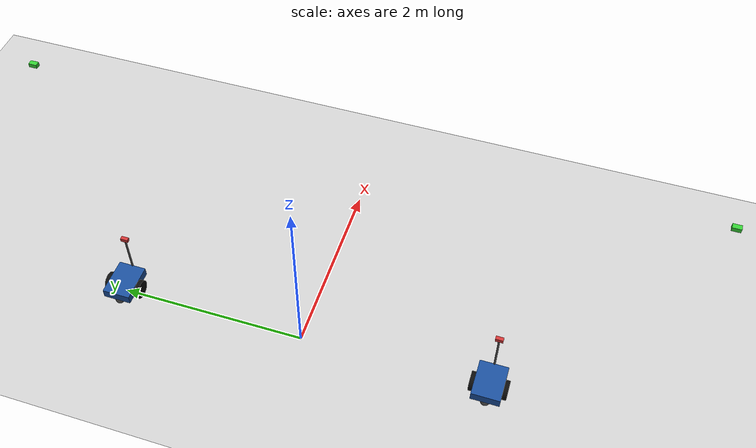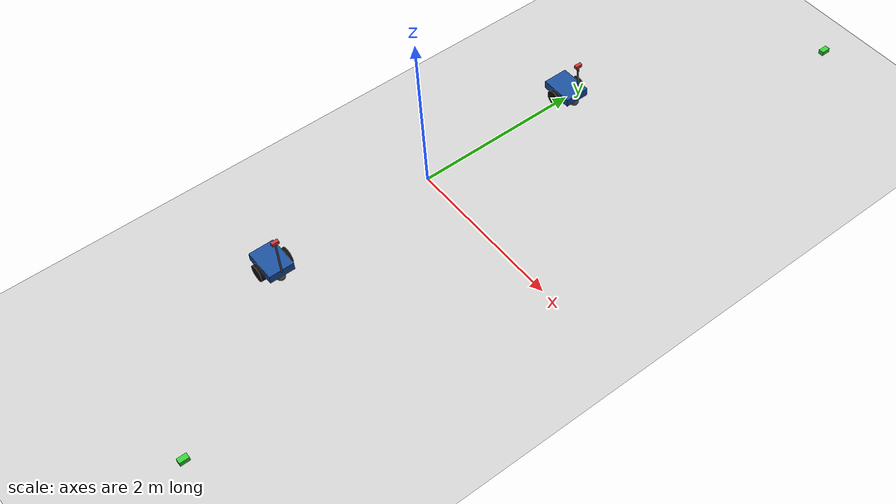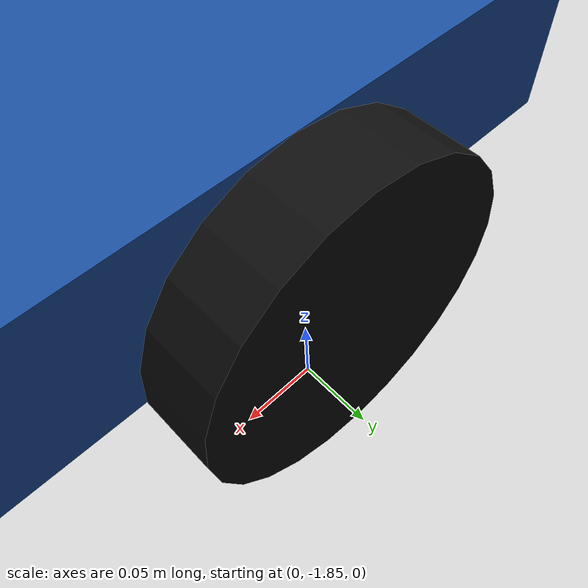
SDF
<?xml version="1.0" ?>
<sdf version="1.6">
  <world name="default">
    <scene>
      <ambient>0.7 0.7 0.7 1</ambient>
      <background>0.7 0.8 0.9 1</background>
      <shadows>true</shadows>
    </scene>
    <gui>
      <camera name="user_camera">
        <pose>-5 0 1 0 0.2 0</pose>
      </camera>
    </gui>
    <physics type="ode">
      <ode>
        <solver>
          <type>quick</type>
          <iters>100</iters>
          <sor>1.0</sor>
        </solver>
        <constraints>
          <cfm>0.0</cfm>
          <erp>0.2</erp>
          <contact_max_correcting_vel>100.0</contact_max_correcting_vel>
          <contact_surface_layer>0.001</contact_surface_layer>
        </constraints>
      </ode>
      <real_time_update_rate>1000</real_time_update_rate>
    </physics>
    <gravity>0 0 -9.8</gravity>
    <include>
      <uri>model://sun</uri>
    </include>

    <include>
      <uri>model://ground_plane</uri>
    </include>

    <model name="rover1">
        <pose>0 2 0 0 0 0</pose>

      <!-- Chassis. Origin sits at wheel-axle height (0.15 m) so the wheels
           (r = 0.1 m) and the two frictionless caster spheres all touch the
           ground plane when the model spawns at z = 0. -->
      <link name="base_link">
        <pose>0 0 0.15 0 0 0</pose>
        <inertial>
          <mass>5.0</mass>
          <inertia>
            <ixx>0.0417</ixx>
            <ixy>0</ixy>
            <ixz>0</ixz>
            <iyy>0.0708</iyy>
            <iyz>0</iyz>
            <izz>0.1042</izz>
          </inertia>
        </inertial>
        <collision name="base_collision">
          <geometry>
            <box>
              <size>0.4 0.3 0.1</size>
            </box>
          </geometry>
        </collision>
        <!-- Front / rear casters: frictionless spheres so the two driven
             wheels fully determine the rover's motion. -->
        <collision name="front_caster_collision">
          <pose>0.15 0 -0.10 0 0 0</pose>
          <geometry>
            <sphere>
              <radius>0.05</radius>
            </sphere>
          </geometry>
          <surface>
            <friction>
              <ode>
                <mu>0.0</mu>
                <mu2>0.0</mu2>
              </ode>
            </friction>
          </surface>
        </collision>
        <collision name="rear_caster_collision">
          <pose>-0.15 0 -0.10 0 0 0</pose>
          <geometry>
            <sphere>
              <radius>0.05</radius>
            </sphere>
          </geometry>
          <surface>
            <friction>
              <ode>
                <mu>0.0</mu>
                <mu2>0.0</mu2>
              </ode>
            </friction>
          </surface>
        </collision>
        <visual name="base_visual">
          <geometry>
            <box>
              <size>0.4 0.3 0.1</size>
            </box>
          </geometry>
          <material>
            <ambient>0.1 0.3 0.6 1</ambient>
            <diffuse>0.1 0.3 0.6 1</diffuse>
          </material>
        </visual>
        <visual name="front_caster_visual">
          <pose>0.15 0 -0.10 0 0 0</pose>
          <geometry>
            <sphere>
              <radius>0.05</radius>
            </sphere>
          </geometry>
          <material>
            <ambient>0.3 0.3 0.3 1</ambient>
            <diffuse>0.3 0.3 0.3 1</diffuse>
          </material>
        </visual>
        <visual name="rear_caster_visual">
          <pose>-0.15 0 -0.10 0 0 0</pose>
          <geometry>
            <sphere>
              <radius>0.05</radius>
            </sphere>
          </geometry>
          <material>
            <ambient>0.3 0.3 0.3 1</ambient>
            <diffuse>0.3 0.3 0.3 1</diffuse>
          </material>
        </visual>
        <!-- Camera mast (visual only) up to the camera_link offset. -->
        <visual name="camera_mast_visual">
          <pose>0.2 0 0.25 0 0 0</pose>
          <geometry>
            <cylinder>
              <radius>0.01</radius>
              <length>0.45</length>
            </cylinder>
          </geometry>
          <material>
            <ambient>0.3 0.3 0.3 1</ambient>
            <diffuse>0.3 0.3 0.3 1</diffuse>
          </material>
        </visual>
      </link>

      <link name="left_wheel">
        <pose>0 0.17 0.1 -1.5707963 0 0</pose>
        <inertial>
          <mass>0.5</mass>
          <inertia>
            <ixx>0.00135</ixx>
            <ixy>0</ixy>
            <ixz>0</ixz>
            <iyy>0.00135</iyy>
            <iyz>0</iyz>
            <izz>0.0025</izz>
          </inertia>
        </inertial>
        <collision name="left_wheel_collision">
          <geometry>
            <cylinder>
              <radius>0.1</radius>
              <length>0.05</length>
            </cylinder>
          </geometry>
          <surface>
            <friction>
              <ode>
                <mu>1.5</mu>
                <mu2>1.5</mu2>
              </ode>
            </friction>
          </surface>
        </collision>
        <visual name="left_wheel_visual">
          <geometry>
            <cylinder>
              <radius>0.1</radius>
              <length>0.05</length>
            </cylinder>
          </geometry>
          <material>
            <ambient>0.05 0.05 0.05 1</ambient>
            <diffuse>0.05 0.05 0.05 1</diffuse>
          </material>
        </visual>
      </link>

      <link name="right_wheel">
        <pose>0 -0.17 0.1 -1.5707963 0 0</pose>
        <inertial>
          <mass>0.5</mass>
          <inertia>
            <ixx>0.00135</ixx>
            <ixy>0</ixy>
            <ixz>0</ixz>
            <iyy>0.00135</iyy>
            <iyz>0</iyz>
            <izz>0.0025</izz>
          </inertia>
        </inertial>
        <collision name="right_wheel_collision">
          <geometry>
            <cylinder>
              <radius>0.1</radius>
              <length>0.05</length>
            </cylinder>
          </geometry>
          <surface>
            <friction>
              <ode>
                <mu>1.5</mu>
                <mu2>1.5</mu2>
              </ode>
            </friction>
          </surface>
        </collision>
        <visual name="right_wheel_visual">
          <geometry>
            <cylinder>
              <radius>0.1</radius>
              <length>0.05</length>
            </cylinder>
          </geometry>
          <material>
            <ambient>0.05 0.05 0.05 1</ambient>
            <diffuse>0.05 0.05 0.05 1</diffuse>
          </material>
        </visual>
      </link>

      <joint name="left_wheel_joint" type="revolute">
        <parent>base_link</parent>
        <child>left_wheel</child>
        <axis>
          <xyz>0 1 0</xyz>
          <use_parent_model_frame>true</use_parent_model_frame>
        </axis>
      </joint>

      <joint name="right_wheel_joint" type="revolute">
        <parent>base_link</parent>
        <child>right_wheel</child>
        <axis>
          <xyz>0 1 0</xyz>
          <use_parent_model_frame>true</use_parent_model_frame>
        </axis>
      </joint>

      <!-- Camera at (0.2, 0.0, 0.5) relative to base_link per the plan doc's
           Step 1.1 spec (base_link origin is at z = 0.15 in the model frame,
           so the link pose below is 0.15 + 0.5). -->
      <link name="camera_link">
        <pose>0.2 0 0.65 0 0 0</pose>
        <inertial>
          <mass>0.05</mass>
          <inertia>
            <ixx>0.00001</ixx>
            <ixy>0</ixy>
            <ixz>0</ixz>
            <iyy>0.00001</iyy>
            <iyz>0</iyz>
            <izz>0.00001</izz>
          </inertia>
        </inertial>
        <visual name="camera_visual">
          <geometry>
            <box>
              <size>0.04 0.08 0.04</size>
            </box>
          </geometry>
          <material>
            <ambient>0.8 0.2 0.2 1</ambient>
            <diffuse>0.8 0.2 0.2 1</diffuse>
          </material>
        </visual>
        <sensor type="camera" name="rover_camera_sensor">
          <update_rate>15.0</update_rate>
          <always_on>true</always_on>
          <visualize>false</visualize>
          <camera name="rover_camera">
            <horizontal_fov>1.3962634</horizontal_fov>
            <image>
              <width>640</width>
              <height>480</height>
              <format>R8G8B8</format>
            </image>
            <clip>
              <near>0.05</near>
              <far>100.0</far>
            </clip>
          </camera>
          <plugin name="camera_controller" filename="libgazebo_ros_camera.so">
            <robotNamespace>/</robotNamespace>
            <cameraName>rover1/camera</cameraName>
            <imageTopicName>image_raw</imageTopicName>
            <cameraInfoTopicName>camera_info</cameraInfoTopicName>
            <frameName>camera_link</frameName>
          </plugin>
        </sensor>
      </link>

      <joint name="camera_joint" type="fixed">
        <parent>base_link</parent>
        <child>camera_link</child>
      </joint>

      <plugin name="diff_drive_controller" filename="libgazebo_ros_diff_drive.so">
        <robotNamespace>/rover1</robotNamespace>
        <commandTopic>cmd_vel</commandTopic>
        <odometryTopic>odom</odometryTopic>
        <odometryFrame>odom</odometryFrame>
        <odometrySource>world</odometrySource>
        <robotBaseFrame>base_link</robotBaseFrame>
        <leftJoint>left_wheel_joint</leftJoint>
        <rightJoint>right_wheel_joint</rightJoint>
        <wheelSeparation>0.34</wheelSeparation>
        <wheelDiameter>0.2</wheelDiameter>
        <wheelTorque>10.0</wheelTorque>
        <wheelAcceleration>0.0</wheelAcceleration>
        <updateRate>30.0</updateRate>
        <publishOdomTF>false</publishOdomTF>
        <publishWheelTF>false</publishWheelTF>
        <publishWheelJointState>false</publishWheelJointState>
        <legacyMode>false</legacyMode>
      </plugin>

    </model>

    <model name="rover2">
        <pose>0 -2 0 0 0 0</pose>

      <!-- Chassis. Origin sits at wheel-axle height (0.15 m) so the wheels
           (r = 0.1 m) and the two frictionless caster spheres all touch the
           ground plane when the model spawns at z = 0. -->
      <link name="base_link">
        <pose>0 0 0.15 0 0 0</pose>
        <inertial>
          <mass>5.0</mass>
          <inertia>
            <ixx>0.0417</ixx>
            <ixy>0</ixy>
            <ixz>0</ixz>
            <iyy>0.0708</iyy>
            <iyz>0</iyz>
            <izz>0.1042</izz>
          </inertia>
        </inertial>
        <collision name="base_collision">
          <geometry>
            <box>
              <size>0.4 0.3 0.1</size>
            </box>
          </geometry>
        </collision>
        <!-- Front / rear casters: frictionless spheres so the two driven
             wheels fully determine the rover's motion. -->
        <collision name="front_caster_collision">
          <pose>0.15 0 -0.10 0 0 0</pose>
          <geometry>
            <sphere>
              <radius>0.05</radius>
            </sphere>
          </geometry>
          <surface>
            <friction>
              <ode>
                <mu>0.0</mu>
                <mu2>0.0</mu2>
              </ode>
            </friction>
          </surface>
        </collision>
        <collision name="rear_caster_collision">
          <pose>-0.15 0 -0.10 0 0 0</pose>
          <geometry>
            <sphere>
              <radius>0.05</radius>
            </sphere>
          </geometry>
          <surface>
            <friction>
              <ode>
                <mu>0.0</mu>
                <mu2>0.0</mu2>
              </ode>
            </friction>
          </surface>
        </collision>
        <visual name="base_visual">
          <geometry>
            <box>
              <size>0.4 0.3 0.1</size>
            </box>
          </geometry>
          <material>
            <ambient>0.1 0.3 0.6 1</ambient>
            <diffuse>0.1 0.3 0.6 1</diffuse>
          </material>
        </visual>
        <visual name="front_caster_visual">
          <pose>0.15 0 -0.10 0 0 0</pose>
          <geometry>
            <sphere>
              <radius>0.05</radius>
            </sphere>
          </geometry>
          <material>
            <ambient>0.3 0.3 0.3 1</ambient>
            <diffuse>0.3 0.3 0.3 1</diffuse>
          </material>
        </visual>
        <visual name="rear_caster_visual">
          <pose>-0.15 0 -0.10 0 0 0</pose>
          <geometry>
            <sphere>
              <radius>0.05</radius>
            </sphere>
          </geometry>
          <material>
            <ambient>0.3 0.3 0.3 1</ambient>
            <diffuse>0.3 0.3 0.3 1</diffuse>
          </material>
        </visual>
        <!-- Camera mast (visual only) up to the camera_link offset. -->
        <visual name="camera_mast_visual">
          <pose>0.2 0 0.25 0 0 0</pose>
          <geometry>
            <cylinder>
              <radius>0.01</radius>
              <length>0.45</length>
            </cylinder>
          </geometry>
          <material>
            <ambient>0.3 0.3 0.3 1</ambient>
            <diffuse>0.3 0.3 0.3 1</diffuse>
          </material>
        </visual>
      </link>

      <link name="left_wheel">
        <pose>0 0.17 0.1 -1.5707963 0 0</pose>
        <inertial>
          <mass>0.5</mass>
          <inertia>
            <ixx>0.00135</ixx>
            <ixy>0</ixy>
            <ixz>0</ixz>
            <iyy>0.00135</iyy>
            <iyz>0</iyz>
            <izz>0.0025</izz>
          </inertia>
        </inertial>
        <collision name="left_wheel_collision">
          <geometry>
            <cylinder>
              <radius>0.1</radius>
              <length>0.05</length>
            </cylinder>
          </geometry>
          <surface>
            <friction>
              <ode>
                <mu>1.5</mu>
                <mu2>1.5</mu2>
              </ode>
            </friction>
          </surface>
        </collision>
        <visual name="left_wheel_visual">
          <geometry>
            <cylinder>
              <radius>0.1</radius>
              <length>0.05</length>
            </cylinder>
          </geometry>
          <material>
            <ambient>0.05 0.05 0.05 1</ambient>
            <diffuse>0.05 0.05 0.05 1</diffuse>
          </material>
        </visual>
      </link>

      <link name="right_wheel">
        <pose>0 -0.17 0.1 -1.5707963 0 0</pose>
        <inertial>
          <mass>0.5</mass>
          <inertia>
            <ixx>0.00135</ixx>
            <ixy>0</ixy>
            <ixz>0</ixz>
            <iyy>0.00135</iyy>
            <iyz>0</iyz>
            <izz>0.0025</izz>
          </inertia>
        </inertial>
        <collision name="right_wheel_collision">
          <geometry>
            <cylinder>
              <radius>0.1</radius>
              <length>0.05</length>
            </cylinder>
          </geometry>
          <surface>
            <friction>
              <ode>
                <mu>1.5</mu>
                <mu2>1.5</mu2>
              </ode>
            </friction>
          </surface>
        </collision>
        <visual name="right_wheel_visual">
          <geometry>
            <cylinder>
              <radius>0.1</radius>
              <length>0.05</length>
            </cylinder>
          </geometry>
          <material>
            <ambient>0.05 0.05 0.05 1</ambient>
            <diffuse>0.05 0.05 0.05 1</diffuse>
          </material>
        </visual>
      </link>

      <joint name="left_wheel_joint" type="revolute">
        <parent>base_link</parent>
        <child>left_wheel</child>
        <axis>
          <xyz>0 1 0</xyz>
          <use_parent_model_frame>true</use_parent_model_frame>
        </axis>
      </joint>

      <joint name="right_wheel_joint" type="revolute">
        <parent>base_link</parent>
        <child>right_wheel</child>
        <axis>
          <xyz>0 1 0</xyz>
          <use_parent_model_frame>true</use_parent_model_frame>
        </axis>
      </joint>

      <!-- Camera at (0.2, 0.0, 0.5) relative to base_link per the plan doc's
           Step 1.1 spec (base_link origin is at z = 0.15 in the model frame,
           so the link pose below is 0.15 + 0.5). -->
      <link name="camera_link">
        <pose>0.2 0 0.65 0 0 0</pose>
        <inertial>
          <mass>0.05</mass>
          <inertia>
            <ixx>0.00001</ixx>
            <ixy>0</ixy>
            <ixz>0</ixz>
            <iyy>0.00001</iyy>
            <iyz>0</iyz>
            <izz>0.00001</izz>
          </inertia>
        </inertial>
        <visual name="camera_visual">
          <geometry>
            <box>
              <size>0.04 0.08 0.04</size>
            </box>
          </geometry>
          <material>
            <ambient>0.8 0.2 0.2 1</ambient>
            <diffuse>0.8 0.2 0.2 1</diffuse>
          </material>
        </visual>
        <sensor type="camera" name="rover_camera_sensor">
          <update_rate>15.0</update_rate>
          <always_on>true</always_on>
          <visualize>false</visualize>
          <camera name="rover_camera">
            <horizontal_fov>1.3962634</horizontal_fov>
            <image>
              <width>640</width>
              <height>480</height>
              <format>R8G8B8</format>
            </image>
            <clip>
              <near>0.05</near>
              <far>100.0</far>
            </clip>
          </camera>
          <plugin name="camera_controller" filename="libgazebo_ros_camera.so">
            <robotNamespace>/</robotNamespace>
            <cameraName>rover2/camera</cameraName>
            <imageTopicName>image_raw</imageTopicName>
            <cameraInfoTopicName>camera_info</cameraInfoTopicName>
            <frameName>camera_link</frameName>
          </plugin>
        </sensor>
      </link>

      <joint name="camera_joint" type="fixed">
        <parent>base_link</parent>
        <child>camera_link</child>
      </joint>

      <plugin name="diff_drive_controller" filename="libgazebo_ros_diff_drive.so">
        <robotNamespace>/rover2</robotNamespace>
        <commandTopic>cmd_vel</commandTopic>
        <odometryTopic>odom</odometryTopic>
        <odometryFrame>odom</odometryFrame>
        <odometrySource>world</odometrySource>
        <robotBaseFrame>base_link</robotBaseFrame>
        <leftJoint>left_wheel_joint</leftJoint>
        <rightJoint>right_wheel_joint</rightJoint>
        <wheelSeparation>0.34</wheelSeparation>
        <wheelDiameter>0.2</wheelDiameter>
        <wheelTorque>10.0</wheelTorque>
        <wheelAcceleration>0.0</wheelAcceleration>
        <updateRate>30.0</updateRate>
        <publishOdomTF>false</publishOdomTF>
        <publishWheelTF>false</publishWheelTF>
        <publishWheelJointState>false</publishWheelJointState>
        <legacyMode>false</legacyMode>
      </plugin>

    </model>

    <model name="camera_rig1">
      <static>true</static>
      <pose>2 4 1 0 0 0</pose>
      <link name="base_link">
        <visual name="rig_visual">
          <geometry>
            <box>
              <size>0.06 0.1 0.05</size>
            </box>
          </geometry>
          <material>
            <ambient>0.2 0.8 0.2 1</ambient>
            <diffuse>0.2 0.8 0.2 1</diffuse>
          </material>
        </visual>
        <sensor type="camera" name="camera_rig_sensor">
          <update_rate>10.0</update_rate>
          <always_on>true</always_on>
          <visualize>false</visualize>
          <camera name="camera_rig_camera">
            <horizontal_fov>1.3962634</horizontal_fov>
            <image>
              <width>640</width>
              <height>480</height>
              <format>R8G8B8</format>
            </image>
            <clip>
              <near>0.05</near>
              <far>100.0</far>
            </clip>
          </camera>
          <plugin name="camera_rig_controller_plugin" filename="libgazebo_ros_camera.so">
            <robotNamespace>/</robotNamespace>
            <cameraName>camera_rig1/camera</cameraName>
            <imageTopicName>image_raw</imageTopicName>
            <cameraInfoTopicName>camera_info</cameraInfoTopicName>
            <frameName>camera_rig1_base_link</frameName>
          </plugin>
        </sensor>
      </link>
    </model>

    <model name="camera_rig2">
      <static>true</static>
      <pose>2 -4 1 0 0 0</pose>
      <link name="base_link">
        <visual name="rig_visual">
          <geometry>
            <box>
              <size>0.06 0.1 0.05</size>
            </box>
          </geometry>
          <material>
            <ambient>0.2 0.8 0.2 1</ambient>
            <diffuse>0.2 0.8 0.2 1</diffuse>
          </material>
        </visual>
        <sensor type="camera" name="camera_rig_sensor">
          <update_rate>10.0</update_rate>
          <always_on>true</always_on>
          <visualize>false</visualize>
          <camera name="camera_rig_camera">
            <horizontal_fov>1.3962634</horizontal_fov>
            <image>
              <width>640</width>
              <height>480</height>
              <format>R8G8B8</format>
            </image>
            <clip>
              <near>0.05</near>
              <far>100.0</far>
            </clip>
          </camera>
          <plugin name="camera_rig_controller_plugin" filename="libgazebo_ros_camera.so">
            <robotNamespace>/</robotNamespace>
            <cameraName>camera_rig2/camera</cameraName>
            <imageTopicName>image_raw</imageTopicName>
            <cameraInfoTopicName>camera_info</cameraInfoTopicName>
            <frameName>camera_rig2_base_link</frameName>
          </plugin>
        </sensor>
      </link>
    </model>
  </world>
</sdf>
